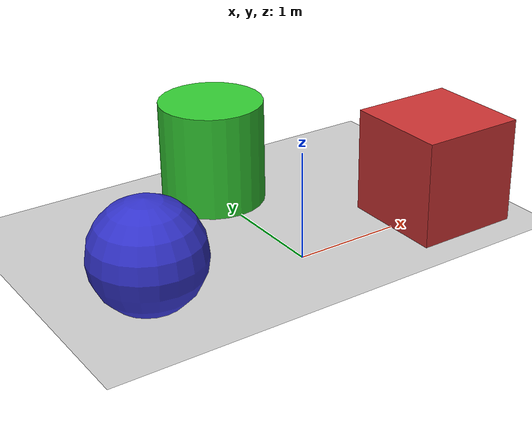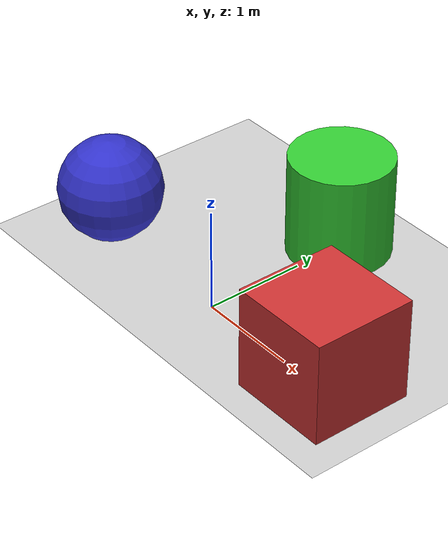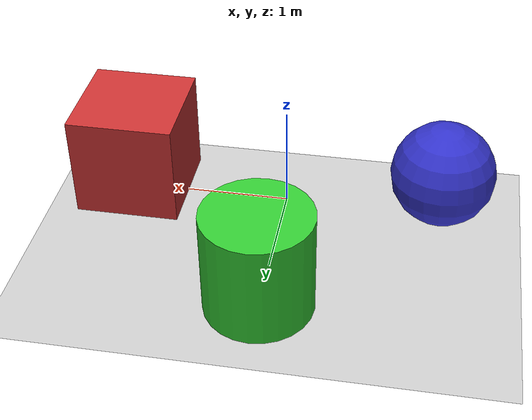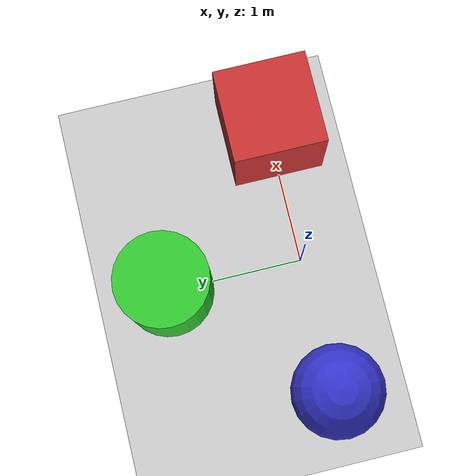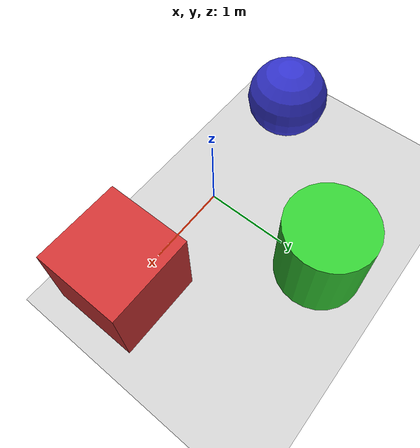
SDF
<?xml version="1.0" ?>
<sdf version="1.6">
  <world name="empty_world">
    <include>
      <uri>model://ground_plane</uri>
    </include>
    <include>
      <uri>model://sun</uri>
    </include>

    <model name="cube_1m">
      <pose>1.5 0 0.5 0 0 0</pose>
      <static>true</static>
      <link name="cube_link">
        <visual name="cube_visual">
          <geometry>
            <box>
              <size>1 1 1</size>
            </box>
          </geometry>
          <material>
            <ambient>0.8 0.2 0.2 1</ambient>
            <diffuse>0.8 0.2 0.2 1</diffuse>
          </material>
        </visual>
        <collision name="cube_collision">
          <geometry>
            <box>
              <size>1 1 1</size>
            </box>
          </geometry>
        </collision>
        <inertial>
          <mass>1.0</mass>
          <inertia>
            <ixx>0.167</ixx>
            <ixy>0</ixy>
            <ixz>0</ixz>
            <iyy>0.167</iyy>
            <iyz>0</iyz>
            <izz>0.167</izz>
          </inertia>
        </inertial>
      </link>
    </model>

    <model name="cylinder_1m">
      <pose>0 1.5 0.5 0 0 0</pose>
      <static>true</static>
      <link name="cylinder_link">
        <visual name="cylinder_visual">
          <geometry>
            <cylinder>
              <radius>0.5</radius>
              <length>1</length>
            </cylinder>
          </geometry>
          <material>
            <ambient>0.2 0.8 0.2 1</ambient>
            <diffuse>0.2 0.8 0.2 1</diffuse>
          </material>
        </visual>
        <collision name="cylinder_collision">
          <geometry>
            <cylinder>
              <radius>0.5</radius>
              <length>1</length>
            </cylinder>
          </geometry>
        </collision>
        <inertial>
          <mass>1.0</mass>
          <inertia>
            <ixx>0.146</ixx>
            <ixy>0</ixy>
            <ixz>0</ixz>
            <iyy>0.146</iyy>
            <iyz>0</iyz>
            <izz>0.125</izz>
          </inertia>
        </inertial>
      </link>
    </model>

    <model name="sphere_1m">
      <pose>-1.5 0 0.5 0 0 0</pose>
      <static>true</static>
      <link name="sphere_link">
        <visual name="sphere_visual">
          <geometry>
            <sphere>
              <radius>0.5</radius>
            </sphere>
          </geometry>
          <material>
            <ambient>0.2 0.2 0.8 1</ambient>
            <diffuse>0.2 0.2 0.8 1</diffuse>
          </material>
        </visual>
        <collision name="sphere_collision">
          <geometry>
            <sphere>
              <radius>0.5</radius>
            </sphere>
          </geometry>
        </collision>
        <inertial>
          <mass>1.0</mass>
          <inertia>
            <ixx>0.1</ixx>
            <ixy>0</ixy>
            <ixz>0</ixz>
            <iyy>0.1</iyy>
            <iyz>0</iyz>
            <izz>0.1</izz>
          </inertia>
        </inertial>
      </link>
    </model>

  </world>
</sdf>
